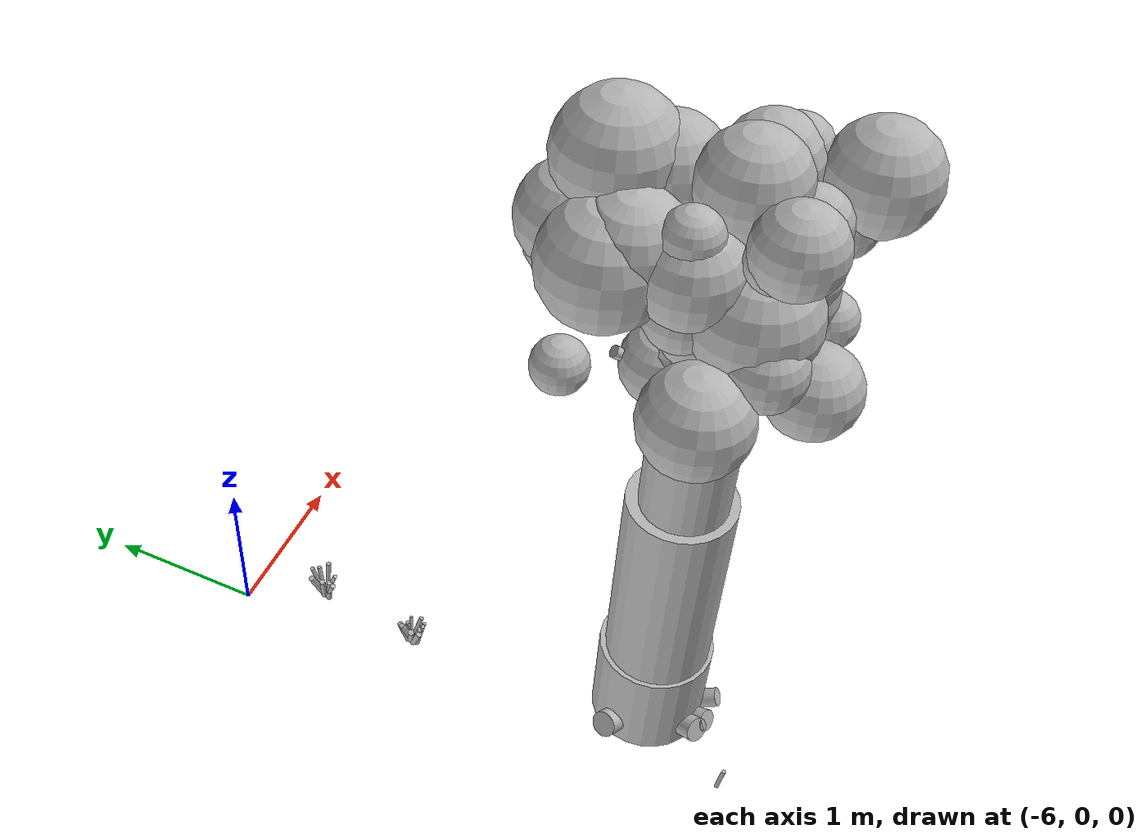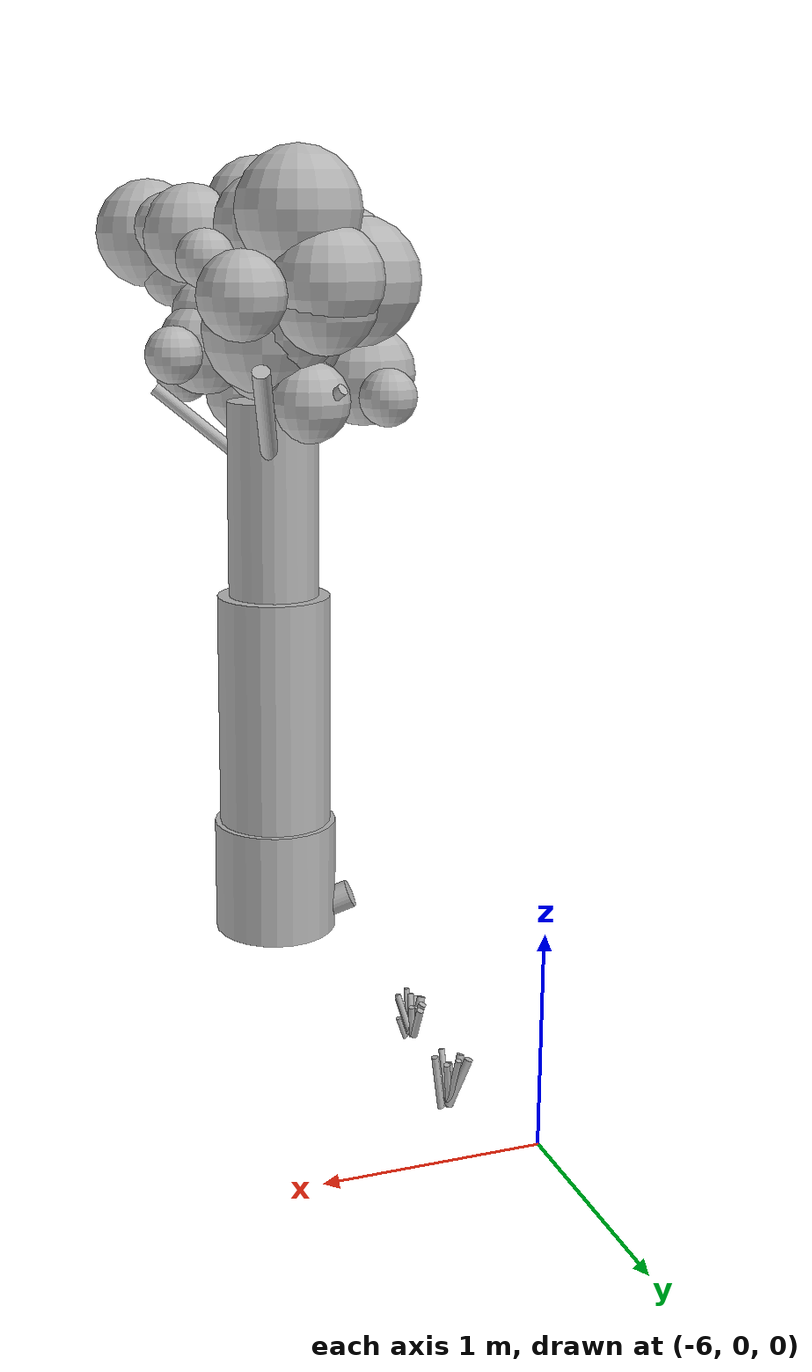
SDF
<sdf version="1.6">
 <world name="default">
  <model name="tree_3">
   <static>true</static>
   <pose>-5.6010 -2.7130 0 0 0 0</pose>
   <link name="trunk">
    <pose>0 0 1.5000 0 0 0</pose>
    <collision name="trunk_c">
     <geometry><cylinder><radius>0.3500</radius><length>3.0000</length></cylinder></geometry>
    </collision>
   </link>
   <link name="trunk_v0">
    <pose>-0.0004 -0.0009 0.3100 0 0 0</pose>
    <visual name="trunk_v0_v">
     <geometry><cylinder><radius>0.3448</radius><length>0.6448</length></cylinder></geometry>
     <material>
      <script>
       <uri>model://bushfire/materials/scripts</uri>
       <uri>model://bushfire/materials/textures</uri>
       <name>Bushfire/CharBark</name>
      </script>
     </material>
    </visual>
   </link>
   <link name="trunk_v1">
    <pose>-0.0026 -0.0063 1.2700 0 0 0</pose>
    <visual name="trunk_v1_v">
     <geometry><cylinder><radius>0.3150</radius><length>1.3520</length></cylinder></geometry>
     <material>
      <script>
       <uri>model://bushfire/materials/scripts</uri>
       <uri>model://bushfire/materials/textures</uri>
       <name>Bushfire/BarkStringy</name>
      </script>
     </material>
    </visual>
   </link>
   <link name="trunk_v2">
    <pose>-0.0066 -0.0158 2.4600 0 0 0</pose>
    <visual name="trunk_v2_v">
     <geometry><cylinder><radius>0.2520</radius><length>1.1232</length></cylinder></geometry>
     <material>
      <script>
       <uri>model://bushfire/materials/scripts</uri>
       <uri>model://bushfire/materials/textures</uri>
       <name>Bushfire/BarkStringy</name>
      </script>
     </material>
    </visual>
   </link>
   <link name="root0">
    <pose>-0.1078 -0.2144 0.09 0 1.150 4.247</pose>
    <visual name="root0_v">
     <geometry><cylinder><radius>0.0774</radius><length>0.4200</length></cylinder></geometry>
     <material>
      <script>
       <uri>model://bushfire/materials/scripts</uri>
       <uri>model://bushfire/materials/textures</uri>
       <name>Bushfire/CharBark</name>
      </script>
     </material>
    </visual>
   </link>
   <link name="root1">
    <pose>0.0515 -0.2344 0.09 0 1.150 4.929</pose>
    <visual name="root1_v">
     <geometry><cylinder><radius>0.0587</radius><length>0.4200</length></cylinder></geometry>
     <material>
      <script>
       <uri>model://bushfire/materials/scripts</uri>
       <uri>model://bushfire/materials/textures</uri>
       <name>Bushfire/CharBark</name>
      </script>
     </material>
    </visual>
   </link>
   <link name="root2">
    <pose>-0.2260 0.0809 0.09 0 1.150 2.798</pose>
    <visual name="root2_v">
     <geometry><cylinder><radius>0.0809</radius><length>0.4200</length></cylinder></geometry>
     <material>
      <script>
       <uri>model://bushfire/materials/scripts</uri>
       <uri>model://bushfire/materials/textures</uri>
       <name>Bushfire/CharBark</name>
      </script>
     </material>
    </visual>
   </link>
   <link name="root3">
    <pose>-0.0571 -0.2331 0.09 0 1.150 4.472</pose>
    <visual name="root3_v">
     <geometry><cylinder><radius>0.0693</radius><length>0.4200</length></cylinder></geometry>
     <material>
      <script>
       <uri>model://bushfire/materials/scripts</uri>
       <uri>model://bushfire/materials/textures</uri>
       <name>Bushfire/CharBark</name>
      </script>
     </material>
    </visual>
   </link>
   <link name="branch0">
    <pose>-0.2564 -0.1005 2.7896 0 0.6211 3.5151</pose>
    <visual name="branch0_v">
     <geometry><cylinder><radius>0.0352</radius><length>0.9466</length></cylinder></geometry>
     <material>
      <script>
       <uri>model://bushfire/materials/scripts</uri>
       <uri>model://bushfire/materials/textures</uri>
       <name>Bushfire/BarkStringy</name>
      </script>
     </material>
    </visual>
   </link>
   <link name="branch1">
    <pose>0.0404 -0.2355 2.7867 0 0.7509 4.8823</pose>
    <visual name="branch1_v">
     <geometry><cylinder><radius>0.0375</radius><length>0.7004</length></cylinder></geometry>
     <material>
      <script>
       <uri>model://bushfire/materials/scripts</uri>
       <uri>model://bushfire/materials/textures</uri>
       <name>Bushfire/BarkStringy</name>
      </script>
     </material>
    </visual>
   </link>
   <link name="branch2">
    <pose>0.2998 -0.1058 2.8327 0 0.8926 5.9439</pose>
    <visual name="branch2_v">
     <geometry><cylinder><radius>0.0350</radius><length>0.8167</length></cylinder></geometry>
     <material>
      <script>
       <uri>model://bushfire/materials/scripts</uri>
       <uri>model://bushfire/materials/textures</uri>
       <name>Bushfire/BarkStringy</name>
      </script>
     </material>
    </visual>
   </link>
   <link name="branch3">
    <pose>0.1153 0.2906 2.8911 0 0.7394 7.4764</pose>
    <visual name="branch3_v">
     <geometry><cylinder><radius>0.0481</radius><length>0.9280</length></cylinder></geometry>
     <material>
      <script>
       <uri>model://bushfire/materials/scripts</uri>
       <uri>model://bushfire/materials/textures</uri>
       <name>Bushfire/BarkStringy</name>
      </script>
     </material>
    </visual>
   </link>
   <link name="branch4">
    <pose>-0.1347 0.1972 2.9427 0 0.9504 8.4532</pose>
    <visual name="branch4_v">
     <geometry><cylinder><radius>0.0324</radius><length>0.5869</length></cylinder></geometry>
     <material>
      <script>
       <uri>model://bushfire/materials/scripts</uri>
       <uri>model://bushfire/materials/textures</uri>
       <name>Bushfire/BarkStringy</name>
      </script>
     </material>
    </visual>
   </link>
   <link name="foliage0">
    <pose>-0.5704 -0.1251 3.1410 0 0 0</pose>
    <visual name="foliage0_v">
     <geometry><sphere><radius>0.2871</radius></sphere></geometry>
     <material>
      <script>
       <uri>model://bushfire/materials/scripts</uri>
       <uri>model://bushfire/materials/textures</uri>
       <name>Bushfire/Foliage0</name>
      </script>
     </material>
    </visual>
   </link>
   <link name="foliage1">
    <pose>-0.2179 -0.2832 3.8786 0 0 0</pose>
    <visual name="foliage1_v">
     <geometry><sphere><radius>0.1569</radius></sphere></geometry>
     <material>
      <script>
       <uri>model://bushfire/materials/scripts</uri>
       <uri>model://bushfire/materials/textures</uri>
       <name>Bushfire/Foliage1</name>
      </script>
     </material>
    </visual>
   </link>
   <link name="foliage2">
    <pose>0.4292 -0.4384 3.6817 0 0 0</pose>
    <visual name="foliage2_v">
     <geometry><sphere><radius>0.1724</radius></sphere></geometry>
     <material>
      <script>
       <uri>model://bushfire/materials/scripts</uri>
       <uri>model://bushfire/materials/textures</uri>
       <name>Bushfire/Foliage1</name>
      </script>
     </material>
    </visual>
   </link>
   <link name="foliage3">
    <pose>0.0822 0.0285 3.8358 0 0 0</pose>
    <visual name="foliage3_v">
     <geometry><sphere><radius>0.2245</radius></sphere></geometry>
     <material>
      <script>
       <uri>model://bushfire/materials/scripts</uri>
       <uri>model://bushfire/materials/textures</uri>
       <name>Bushfire/Foliage0</name>
      </script>
     </material>
    </visual>
   </link>
   <link name="foliage4">
    <pose>-0.1677 0.0263 3.3361 0 0 0</pose>
    <visual name="foliage4_v">
     <geometry><sphere><radius>0.2102</radius></sphere></geometry>
     <material>
      <script>
       <uri>model://bushfire/materials/scripts</uri>
       <uri>model://bushfire/materials/textures</uri>
       <name>Bushfire/Foliage2</name>
      </script>
     </material>
    </visual>
   </link>
   <link name="foliage5">
    <pose>-0.3251 -0.3433 3.3457 0 0 0</pose>
    <visual name="foliage5_v">
     <geometry><sphere><radius>0.2105</radius></sphere></geometry>
     <material>
      <script>
       <uri>model://bushfire/materials/scripts</uri>
       <uri>model://bushfire/materials/textures</uri>
       <name>Bushfire/Foliage0</name>
      </script>
     </material>
    </visual>
   </link>
   <link name="foliage6">
    <pose>-0.1632 -0.2216 3.4839 0 0 0</pose>
    <visual name="foliage6_v">
     <geometry><sphere><radius>0.3282</radius></sphere></geometry>
     <material>
      <script>
       <uri>model://bushfire/materials/scripts</uri>
       <uri>model://bushfire/materials/textures</uri>
       <name>Bushfire/Foliage1</name>
      </script>
     </material>
    </visual>
   </link>
   <link name="foliage7">
    <pose>0.5223 -0.1307 3.9384 0 0 0</pose>
    <visual name="foliage7_v">
     <geometry><sphere><radius>0.1827</radius></sphere></geometry>
     <material>
      <script>
       <uri>model://bushfire/materials/scripts</uri>
       <uri>model://bushfire/materials/textures</uri>
       <name>Bushfire/Foliage2</name>
      </script>
     </material>
    </visual>
   </link>
   <link name="foliage8">
    <pose>0.5124 0.5904 3.7929 0 0 0</pose>
    <visual name="foliage8_v">
     <geometry><sphere><radius>0.1474</radius></sphere></geometry>
     <material>
      <script>
       <uri>model://bushfire/materials/scripts</uri>
       <uri>model://bushfire/materials/textures</uri>
       <name>Bushfire/Foliage0</name>
      </script>
     </material>
    </visual>
   </link>
   <link name="foliage9">
    <pose>-0.1360 0.1210 3.0706 0 0 0</pose>
    <visual name="foliage9_v">
     <geometry><sphere><radius>0.2107</radius></sphere></geometry>
     <material>
      <script>
       <uri>model://bushfire/materials/scripts</uri>
       <uri>model://bushfire/materials/textures</uri>
       <name>Bushfire/Foliage1</name>
      </script>
     </material>
    </visual>
   </link>
   <link name="foliage10">
    <pose>-0.0268 -0.1450 3.2875 0 0 0</pose>
    <visual name="foliage10_v">
     <geometry><sphere><radius>0.2924</radius></sphere></geometry>
     <material>
      <script>
       <uri>model://bushfire/materials/scripts</uri>
       <uri>model://bushfire/materials/textures</uri>
       <name>Bushfire/Foliage2</name>
      </script>
     </material>
    </visual>
   </link>
   <link name="foliage11">
    <pose>0.1057 -0.3344 3.8666 0 0 0</pose>
    <visual name="foliage11_v">
     <geometry><sphere><radius>0.1964</radius></sphere></geometry>
     <material>
      <script>
       <uri>model://bushfire/materials/scripts</uri>
       <uri>model://bushfire/materials/textures</uri>
       <name>Bushfire/Foliage1</name>
      </script>
     </material>
    </visual>
   </link>
   <link name="foliage12">
    <pose>0.2512 0.0415 3.8997 0 0 0</pose>
    <visual name="foliage12_v">
     <geometry><sphere><radius>0.2014</radius></sphere></geometry>
     <material>
      <script>
       <uri>model://bushfire/materials/scripts</uri>
       <uri>model://bushfire/materials/textures</uri>
       <name>Bushfire/Foliage0</name>
      </script>
     </material>
    </visual>
   </link>
   <link name="foliage13">
    <pose>0.1331 0.3430 3.9538 0 0 0</pose>
    <visual name="foliage13_v">
     <geometry><sphere><radius>0.2652</radius></sphere></geometry>
     <material>
      <script>
       <uri>model://bushfire/materials/scripts</uri>
       <uri>model://bushfire/materials/textures</uri>
       <name>Bushfire/Foliage1</name>
      </script>
     </material>
    </visual>
   </link>
   <link name="foliage14">
    <pose>-0.3145 0.4731 3.6712 0 0 0</pose>
    <visual name="foliage14_v">
     <geometry><sphere><radius>0.3357</radius></sphere></geometry>
     <material>
      <script>
       <uri>model://bushfire/materials/scripts</uri>
       <uri>model://bushfire/materials/textures</uri>
       <name>Bushfire/Foliage1</name>
      </script>
     </material>
    </visual>
   </link>
   <link name="foliage15">
    <pose>-0.2659 0.0796 3.7133 0 0 0</pose>
    <visual name="foliage15_v">
     <geometry><sphere><radius>0.2688</radius></sphere></geometry>
     <material>
      <script>
       <uri>model://bushfire/materials/scripts</uri>
       <uri>model://bushfire/materials/textures</uri>
       <name>Bushfire/Foliage0</name>
      </script>
     </material>
    </visual>
   </link>
   <link name="foliage16">
    <pose>-0.0220 -0.5380 3.0281 0 0 0</pose>
    <visual name="foliage16_v">
     <geometry><sphere><radius>0.2508</radius></sphere></geometry>
     <material>
      <script>
       <uri>model://bushfire/materials/scripts</uri>
       <uri>model://bushfire/materials/textures</uri>
       <name>Bushfire/Foliage1</name>
      </script>
     </material>
    </visual>
   </link>
   <link name="foliage17">
    <pose>0.3019 -0.2625 3.3009 0 0 0</pose>
    <visual name="foliage17_v">
     <geometry><sphere><radius>0.2591</radius></sphere></geometry>
     <material>
      <script>
       <uri>model://bushfire/materials/scripts</uri>
       <uri>model://bushfire/materials/textures</uri>
       <name>Bushfire/Foliage2</name>
      </script>
     </material>
    </visual>
   </link>
   <link name="foliage18">
    <pose>0.3819 0.7784 3.6213 0 0 0</pose>
    <visual name="foliage18_v">
     <geometry><sphere><radius>0.2250</radius></sphere></geometry>
     <material>
      <script>
       <uri>model://bushfire/materials/scripts</uri>
       <uri>model://bushfire/materials/textures</uri>
       <name>Bushfire/Foliage0</name>
      </script>
     </material>
    </visual>
   </link>
   <link name="foliage19">
    <pose>-0.2580 0.3737 3.7768 0 0 0</pose>
    <visual name="foliage19_v">
     <geometry><sphere><radius>0.2841</radius></sphere></geometry>
     <material>
      <script>
       <uri>model://bushfire/materials/scripts</uri>
       <uri>model://bushfire/materials/textures</uri>
       <name>Bushfire/Foliage1</name>
      </script>
     </material>
    </visual>
   </link>
   <link name="foliage20">
    <pose>-0.0472 0.0797 3.4681 0 0 0</pose>
    <visual name="foliage20_v">
     <geometry><sphere><radius>0.3183</radius></sphere></geometry>
     <material>
      <script>
       <uri>model://bushfire/materials/scripts</uri>
       <uri>model://bushfire/materials/textures</uri>
       <name>Bushfire/Foliage1</name>
      </script>
     </material>
    </visual>
   </link>
   <link name="foliage21">
    <pose>-0.2271 0.0946 3.4546 0 0 0</pose>
    <visual name="foliage21_v">
     <geometry><sphere><radius>0.2100</radius></sphere></geometry>
     <material>
      <script>
       <uri>model://bushfire/materials/scripts</uri>
       <uri>model://bushfire/materials/textures</uri>
       <name>Bushfire/Foliage1</name>
      </script>
     </material>
    </visual>
   </link>
   <link name="foliage22">
    <pose>0.5411 -0.5368 3.9030 0 0 0</pose>
    <visual name="foliage22_v">
     <geometry><sphere><radius>0.2916</radius></sphere></geometry>
     <material>
      <script>
       <uri>model://bushfire/materials/scripts</uri>
       <uri>model://bushfire/materials/textures</uri>
       <name>Bushfire/Foliage2</name>
      </script>
     </material>
    </visual>
   </link>
   <link name="foliage23">
    <pose>0.0298 0.5773 4.0236 0 0 0</pose>
    <visual name="foliage23_v">
     <geometry><sphere><radius>0.3240</radius></sphere></geometry>
     <material>
      <script>
       <uri>model://bushfire/materials/scripts</uri>
       <uri>model://bushfire/materials/textures</uri>
       <name>Bushfire/Foliage0</name>
      </script>
     </material>
    </visual>
   </link>
   <link name="foliage24">
    <pose>-0.1543 0.1749 3.0284 0 0 0</pose>
    <visual name="foliage24_v">
     <geometry><sphere><radius>0.2237</radius></sphere></geometry>
     <material>
      <script>
       <uri>model://bushfire/materials/scripts</uri>
       <uri>model://bushfire/materials/textures</uri>
       <name>Bushfire/Foliage2</name>
      </script>
     </material>
    </visual>
   </link>
   <link name="foliage25">
    <pose>0.0620 -0.0544 4.0312 0 0 0</pose>
    <visual name="foliage25_v">
     <geometry><sphere><radius>0.2774</radius></sphere></geometry>
     <material>
      <script>
       <uri>model://bushfire/materials/scripts</uri>
       <uri>model://bushfire/materials/textures</uri>
       <name>Bushfire/Foliage0</name>
      </script>
     </material>
    </visual>
   </link>
   <link name="foliage26">
    <pose>0.2529 -0.3064 3.4816 0 0 0</pose>
    <visual name="foliage26_v">
     <geometry><sphere><radius>0.2180</radius></sphere></geometry>
     <material>
      <script>
       <uri>model://bushfire/materials/scripts</uri>
       <uri>model://bushfire/materials/textures</uri>
       <name>Bushfire/Foliage2</name>
      </script>
     </material>
    </visual>
   </link>
   <link name="foliage27">
    <pose>0.4231 -0.0484 3.9065 0 0 0</pose>
    <visual name="foliage27_v">
     <geometry><sphere><radius>0.2588</radius></sphere></geometry>
     <material>
      <script>
       <uri>model://bushfire/materials/scripts</uri>
       <uri>model://bushfire/materials/textures</uri>
       <name>Bushfire/Foliage0</name>
      </script>
     </material>
    </visual>
   </link>
   <link name="foliage28">
    <pose>-0.0725 0.7114 3.5743 0 0 0</pose>
    <visual name="foliage28_v">
     <geometry><sphere><radius>0.2607</radius></sphere></geometry>
     <material>
      <script>
       <uri>model://bushfire/materials/scripts</uri>
       <uri>model://bushfire/materials/textures</uri>
       <name>Bushfire/Foliage1</name>
      </script>
     </material>
    </visual>
   </link>
   <link name="foliage29">
    <pose>-0.2822 0.0942 3.9221 0 0 0</pose>
    <visual name="foliage29_v">
     <geometry><sphere><radius>0.1548</radius></sphere></geometry>
     <material>
      <script>
       <uri>model://bushfire/materials/scripts</uri>
       <uri>model://bushfire/materials/textures</uri>
       <name>Bushfire/Foliage2</name>
      </script>
     </material>
    </visual>
   </link>
   <link name="foliage30">
    <pose>-0.4423 -0.0770 3.0676 0 0 0</pose>
    <visual name="foliage30_v">
     <geometry><sphere><radius>0.1513</radius></sphere></geometry>
     <material>
      <script>
       <uri>model://bushfire/materials/scripts</uri>
       <uri>model://bushfire/materials/textures</uri>
       <name>Bushfire/Foliage1</name>
      </script>
     </material>
    </visual>
   </link>
   <link name="foliage31">
    <pose>0.0471 0.0145 3.4037 0 0 0</pose>
    <visual name="foliage31_v">
     <geometry><sphere><radius>0.3435</radius></sphere></geometry>
     <material>
      <script>
       <uri>model://bushfire/materials/scripts</uri>
       <uri>model://bushfire/materials/textures</uri>
       <name>Bushfire/Foliage0</name>
      </script>
     </material>
    </visual>
   </link>
   <link name="foliage32">
    <pose>0.5474 0.0239 3.2837 0 0 0</pose>
    <visual name="foliage32_v">
     <geometry><sphere><radius>0.1540</radius></sphere></geometry>
     <material>
      <script>
       <uri>model://bushfire/materials/scripts</uri>
       <uri>model://bushfire/materials/textures</uri>
       <name>Bushfire/Foliage1</name>
      </script>
     </material>
    </visual>
   </link>
   <link name="foliage33">
    <pose>-0.0751 0.7323 3.6873 0 0 0</pose>
    <visual name="foliage33_v">
     <geometry><sphere><radius>0.2859</radius></sphere></geometry>
     <material>
      <script>
       <uri>model://bushfire/materials/scripts</uri>
       <uri>model://bushfire/materials/textures</uri>
       <name>Bushfire/Foliage2</name>
      </script>
     </material>
    </visual>
   </link>
   <link name="foliage34">
    <pose>-0.4449 0.6029 3.0858 0 0 0</pose>
    <visual name="foliage34_v">
     <geometry><sphere><radius>0.1522</radius></sphere></geometry>
     <material>
      <script>
       <uri>model://bushfire/materials/scripts</uri>
       <uri>model://bushfire/materials/textures</uri>
       <name>Bushfire/Foliage2</name>
      </script>
     </material>
    </visual>
   </link>
   <link name="foliage35">
    <pose>-0.2154 -0.3611 3.9663 0 0 0</pose>
    <visual name="foliage35_v">
     <geometry><sphere><radius>0.2286</radius></sphere></geometry>
     <material>
      <script>
       <uri>model://bushfire/materials/scripts</uri>
       <uri>model://bushfire/materials/textures</uri>
       <name>Bushfire/Foliage1</name>
      </script>
     </material>
    </visual>
   </link>
   <link name="foliage36">
    <pose>0.3727 -0.4742 3.1393 0 0 0</pose>
    <visual name="foliage36_v">
     <geometry><sphere><radius>0.1582</radius></sphere></geometry>
     <material>
      <script>
       <uri>model://bushfire/materials/scripts</uri>
       <uri>model://bushfire/materials/textures</uri>
       <name>Bushfire/Foliage1</name>
      </script>
     </material>
    </visual>
   </link>
  </model>
  <model name="tussocks">
   <static>true</static>
   <link name="tuft47_0">
    <pose>-5.7748 -0.5019 0.0823 0 0.1152 4.3843</pose>
    <visual name="tuft47_0_v">
     <geometry><cylinder><radius>0.0182</radius><length>0.1790</length></cylinder></geometry>
     <material>
      <script>
       <uri>model://bushfire/materials/scripts</uri>
       <uri>model://bushfire/materials/textures</uri>
       <name>Bushfire/Tussock</name>
      </script>
     </material>
    </visual>
   </link>
   <link name="tuft47_1">
    <pose>-5.7975 -0.4313 0.1160 0 0.3562 2.7378</pose>
    <visual name="tuft47_1_v">
     <geometry><cylinder><radius>0.0192</radius><length>0.2523</length></cylinder></geometry>
     <material>
      <script>
       <uri>model://bushfire/materials/scripts</uri>
       <uri>model://bushfire/materials/textures</uri>
       <name>Bushfire/Tussock</name>
      </script>
     </material>
    </visual>
   </link>
   <link name="tuft47_2">
    <pose>-5.7653 -0.4179 0.1239 0 0.2700 1.8412</pose>
    <visual name="tuft47_2_v">
     <geometry><cylinder><radius>0.0137</radius><length>0.2694</length></cylinder></geometry>
     <material>
      <script>
       <uri>model://bushfire/materials/scripts</uri>
       <uri>model://bushfire/materials/textures</uri>
       <name>Bushfire/Foliage2</name>
      </script>
     </material>
    </visual>
   </link>
   <link name="tuft47_3">
    <pose>-5.7052 -0.4569 0.1188 0 0.1274 6.1257</pose>
    <visual name="tuft47_3_v">
     <geometry><cylinder><radius>0.0157</radius><length>0.2583</length></cylinder></geometry>
     <material>
      <script>
       <uri>model://bushfire/materials/scripts</uri>
       <uri>model://bushfire/materials/textures</uri>
       <name>Bushfire/Foliage2</name>
      </script>
     </material>
    </visual>
   </link>
   <link name="tuft47_4">
    <pose>-5.7961 -0.4693 0.1101 0 0.3065 3.6238</pose>
    <visual name="tuft47_4_v">
     <geometry><cylinder><radius>0.0178</radius><length>0.2394</length></cylinder></geometry>
     <material>
      <script>
       <uri>model://bushfire/materials/scripts</uri>
       <uri>model://bushfire/materials/textures</uri>
       <name>Bushfire/Foliage2</name>
      </script>
     </material>
    </visual>
   </link>
   <link name="tuft47_5">
    <pose>-5.7564 -0.5005 0.1165 0 0.3649 4.7181</pose>
    <visual name="tuft47_5_v">
     <geometry><cylinder><radius>0.0139</radius><length>0.2532</length></cylinder></geometry>
     <material>
      <script>
       <uri>model://bushfire/materials/scripts</uri>
       <uri>model://bushfire/materials/textures</uri>
       <name>Bushfire/Foliage2</name>
      </script>
     </material>
    </visual>
   </link>
   <link name="tuft47_6">
    <pose>-5.7450 -0.4325 0.1112 0 0.2495 0.9443</pose>
    <visual name="tuft47_6_v">
     <geometry><cylinder><radius>0.0142</radius><length>0.2417</length></cylinder></geometry>
     <material>
      <script>
       <uri>model://bushfire/materials/scripts</uri>
       <uri>model://bushfire/materials/textures</uri>
       <name>Bushfire/Foliage2</name>
      </script>
     </material>
    </visual>
   </link>
   <link name="tuft47_7">
    <pose>-5.7779 -0.5076 0.0835 0 0.4193 4.3674</pose>
    <visual name="tuft47_7_v">
     <geometry><cylinder><radius>0.0160</radius><length>0.1815</length></cylinder></geometry>
     <material>
      <script>
       <uri>model://bushfire/materials/scripts</uri>
       <uri>model://bushfire/materials/textures</uri>
       <name>Bushfire/Foliage2</name>
      </script>
     </material>
    </visual>
   </link>
   <link name="tuft75_0">
    <pose>-5.8388 -1.1345 0.0778 0 0.1526 1.0862</pose>
    <visual name="tuft75_0_v">
     <geometry><cylinder><radius>0.0145</radius><length>0.1691</length></cylinder></geometry>
     <material>
      <script>
       <uri>model://bushfire/materials/scripts</uri>
       <uri>model://bushfire/materials/textures</uri>
       <name>Bushfire/Foliage2</name>
      </script>
     </material>
    </visual>
   </link>
   <link name="tuft75_1">
    <pose>-5.8772 -1.1679 0.0891 0 0.3865 3.6627</pose>
    <visual name="tuft75_1_v">
     <geometry><cylinder><radius>0.0198</radius><length>0.1938</length></cylinder></geometry>
     <material>
      <script>
       <uri>model://bushfire/materials/scripts</uri>
       <uri>model://bushfire/materials/textures</uri>
       <name>Bushfire/Foliage2</name>
      </script>
     </material>
    </visual>
   </link>
   <link name="tuft75_2">
    <pose>-5.8505 -1.1439 0.0765 0 0.2984 2.0031</pose>
    <visual name="tuft75_2_v">
     <geometry><cylinder><radius>0.0113</radius><length>0.1664</length></cylinder></geometry>
     <material>
      <script>
       <uri>model://bushfire/materials/scripts</uri>
       <uri>model://bushfire/materials/textures</uri>
       <name>Bushfire/Foliage2</name>
      </script>
     </material>
    </visual>
   </link>
   <link name="tuft75_3">
    <pose>-5.8568 -1.1087 0.0783 0 0.3350 1.7918</pose>
    <visual name="tuft75_3_v">
     <geometry><cylinder><radius>0.0173</radius><length>0.1703</length></cylinder></geometry>
     <material>
      <script>
       <uri>model://bushfire/materials/scripts</uri>
       <uri>model://bushfire/materials/textures</uri>
       <name>Bushfire/Tussock</name>
      </script>
     </material>
    </visual>
   </link>
   <link name="tuft75_4">
    <pose>-5.7804 -1.1224 0.0599 0 0.3942 0.4013</pose>
    <visual name="tuft75_4_v">
     <geometry><cylinder><radius>0.0114</radius><length>0.1301</length></cylinder></geometry>
     <material>
      <script>
       <uri>model://bushfire/materials/scripts</uri>
       <uri>model://bushfire/materials/textures</uri>
       <name>Bushfire/Foliage2</name>
      </script>
     </material>
    </visual>
   </link>
   <link name="tuft75_5">
    <pose>-5.8151 -1.1789 0.0983 0 0.3519 5.5658</pose>
    <visual name="tuft75_5_v">
     <geometry><cylinder><radius>0.0145</radius><length>0.2138</length></cylinder></geometry>
     <material>
      <script>
       <uri>model://bushfire/materials/scripts</uri>
       <uri>model://bushfire/materials/textures</uri>
       <name>Bushfire/Foliage2</name>
      </script>
     </material>
    </visual>
   </link>
   <link name="tuft75_6">
    <pose>-5.8609 -1.1339 0.0883 0 0.3757 2.2490</pose>
    <visual name="tuft75_6_v">
     <geometry><cylinder><radius>0.0187</radius><length>0.1919</length></cylinder></geometry>
     <material>
      <script>
       <uri>model://bushfire/materials/scripts</uri>
       <uri>model://bushfire/materials/textures</uri>
       <name>Bushfire/Foliage2</name>
      </script>
     </material>
    </visual>
   </link>
   <link name="tuft75_7">
    <pose>-5.8748 -1.2039 0.0820 0 0.4015 4.2350</pose>
    <visual name="tuft75_7_v">
     <geometry><cylinder><radius>0.0187</radius><length>0.1782</length></cylinder></geometry>
     <material>
      <script>
       <uri>model://bushfire/materials/scripts</uri>
       <uri>model://bushfire/materials/textures</uri>
       <name>Bushfire/Foliage2</name>
      </script>
     </material>
    </visual>
   </link>
   <link name="tuft75_8">
    <pose>-5.8583 -1.2002 0.0891 0 0.3147 4.4933</pose>
    <visual name="tuft75_8_v">
     <geometry><cylinder><radius>0.0165</radius><length>0.1937</length></cylinder></geometry>
     <material>
      <script>
       <uri>model://bushfire/materials/scripts</uri>
       <uri>model://bushfire/materials/textures</uri>
       <name>Bushfire/Foliage2</name>
      </script>
     </material>
    </visual>
   </link>
   <link name="tuft75_9">
    <pose>-5.8491 -1.2209 0.0997 0 0.2093 4.6875</pose>
    <visual name="tuft75_9_v">
     <geometry><cylinder><radius>0.0131</radius><length>0.2168</length></cylinder></geometry>
     <material>
      <script>
       <uri>model://bushfire/materials/scripts</uri>
       <uri>model://bushfire/materials/textures</uri>
       <name>Bushfire/Tussock</name>
      </script>
     </material>
    </visual>
   </link>
   <link name="tuft75_10">
    <pose>-5.8162 -1.1992 0.0826 0 0.4051 5.2830</pose>
    <visual name="tuft75_10_v">
     <geometry><cylinder><radius>0.0121</radius><length>0.1797</length></cylinder></geometry>
     <material>
      <script>
       <uri>model://bushfire/materials/scripts</uri>
       <uri>model://bushfire/materials/textures</uri>
       <name>Bushfire/Foliage2</name>
      </script>
     </material>
    </visual>
   </link>
   <link name="tuft174_4">
    <pose>-5.9889 -3.3330 0.0636 0 0.2699 5.7482</pose>
    <visual name="tuft174_4_v">
     <geometry><cylinder><radius>0.0133</radius><length>0.1383</length></cylinder></geometry>
     <material>
      <script>
       <uri>model://bushfire/materials/scripts</uri>
       <uri>model://bushfire/materials/textures</uri>
       <name>Bushfire/Tussock</name>
      </script>
     </material>
    </visual>
   </link>
  </model>
 </world>
</sdf>
